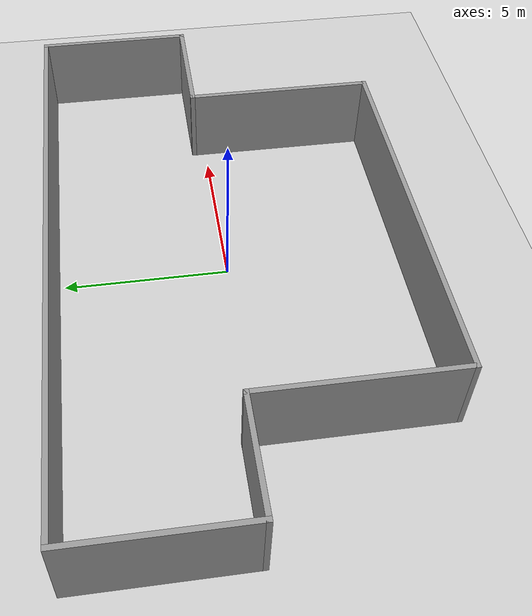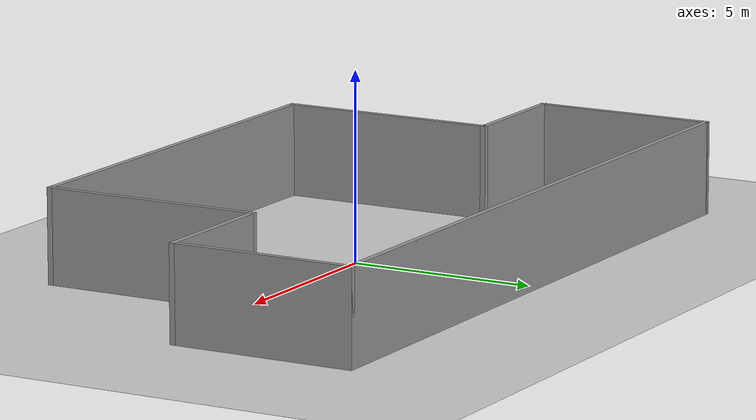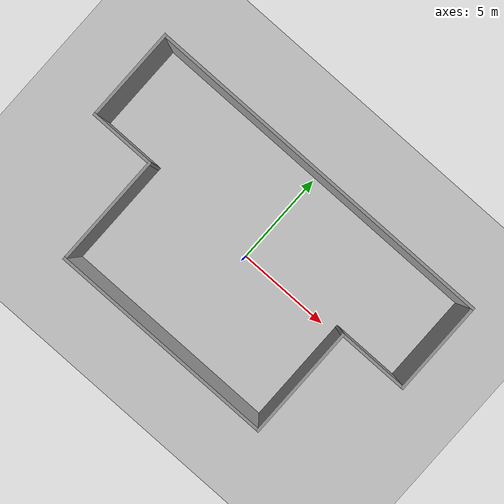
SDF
<sdf version="1.7">
 <world name="default">
  <light name="sun" type="directional">
   <pose>0 0 10 0 -0 0</pose>
   <diffuse>0.8 0.8 0.8 1</diffuse>
   <specular>0.2 0.2 0.2 1</specular>
   <attenuation>
    <range>1000</range>
    <constant>0.9</constant>
    <linear>0.01</linear>
    <quadratic>0.001</quadratic>
   </attenuation>
   <direction>-0.5 0.1 -0.9</direction>
   <spot><inner_angle>0</inner_angle><outer_angle>0</outer_angle><falloff>0</falloff></spot>
  </light>
  <gravity>0 0 -9.8</gravity>
  <magnetic_field>6e-06 2.3e-05 -4.2e-05</magnetic_field>
  <atmosphere type="adiabatic"/>
  <physics type="ode">
   <max_step_size>0.001</max_step_size>
   <real_time_factor>1</real_time_factor>
   <real_time_update_rate>1000</real_time_update_rate>
  </physics>
  <scene><ambient>0.4 0.4 0.4 1</ambient><background>0.7 0.7 0.7 1</background><shadows>1</shadows></scene>
  <audio><device>default</device></audio>
  <spherical_coordinates>
   <surface_model>EARTH_WGS84</surface_model>
   <latitude_deg>0</latitude_deg>
   <longitude_deg>0</longitude_deg>
   <elevation>0</elevation>
   <heading_deg>0</heading_deg>
  </spherical_coordinates>
  <model name="ground_plane">
   <static>1</static>
   <link name="link">
    <collision name="collision">
     <geometry><plane><normal>0 0 1</normal><size>100 100</size></plane></geometry>
     <surface>
      <contact><collide_bitmask>65535</collide_bitmask></contact>
      <friction><ode><mu>100</mu><mu2>50</mu2></ode></friction>
     </surface>
    </collision>
    <visual name="visual">
     <cast_shadows>0</cast_shadows>
     <geometry><plane><normal>0 0 1</normal><size>100 100</size></plane></geometry>
     <material>
      <script><uri>file://media/materials/scripts/gazebo.material</uri><name>Gazebo/Grey</name></script>
     </material>
    </visual>
   </link>
  </model>
  <model name="SimpleModel">
   <pose>-0.054039 -0.108079 0 0 -0 0</pose>
   <link name="Wall_0">
    <collision name="Wall_0_Collision">
     <geometry><box><size>6 0.15 2.5</size></box></geometry>
     <pose>0 0 1.25 0 -0 0</pose>
    </collision>
    <visual name="Wall_0_Visual">
     <pose>0 0 1.25 0 -0 0</pose>
     <geometry><box><size>6 0.15 2.5</size></box></geometry>
     <material>
      <script><uri>file://media/materials/scripts/gazebo.material</uri><name>Gazebo/Grey</name></script>
      <ambient>1 1 1 1</ambient>
     </material>
     <meta><layer>0</layer></meta>
    </visual>
    <pose>5.775 -2.425 0 0 -0 -1.5708</pose>
   </link>
   <link name="Wall_1">
    <collision name="Wall_1_Collision">
     <geometry><box><size>12 0.15 2.5</size></box></geometry>
     <pose>0 0 1.25 0 -0 0</pose>
    </collision>
    <visual name="Wall_1_Visual">
     <pose>0 0 1.25 0 -0 0</pose>
     <geometry><box><size>12 0.15 2.5</size></box></geometry>
     <material>
      <script><uri>file://media/materials/scripts/gazebo.material</uri><name>Gazebo/Grey</name></script>
      <ambient>1 1 1 1</ambient>
     </material>
     <meta><layer>0</layer></meta>
    </visual>
    <pose>-0.15 -5.35 0 0 -0 3.14159</pose>
   </link>
   <link name="Wall_2">
    <collision name="Wall_2_Collision">
     <geometry><box><size>6 0.15 2.5</size></box></geometry>
     <pose>0 0 1.25 0 -0 0</pose>
    </collision>
    <visual name="Wall_2_Visual">
     <pose>0 0 1.25 0 -0 0</pose>
     <geometry><box><size>6 0.15 2.5</size></box></geometry>
     <material>
      <script><uri>file://media/materials/scripts/gazebo.material</uri><name>Gazebo/Grey</name></script>
      <ambient>1 1 1 1</ambient>
     </material>
     <meta><layer>0</layer></meta>
    </visual>
    <pose>-6.075 -2.425 0 0 -0 1.5708</pose>
   </link>
   <link name="Wall_3">
    <collision name="Wall_3_Collision">
     <geometry><box><size>3.5 0.15 2.5</size></box></geometry>
     <pose>0 0 1.25 0 -0 0</pose>
    </collision>
    <visual name="Wall_3_Visual">
     <pose>0 0 1.25 0 -0 0</pose>
     <geometry><box><size>3.5 0.15 2.5</size></box></geometry>
     <material>
      <script><uri>file://media/materials/scripts/gazebo.material</uri><name>Gazebo/Grey</name></script>
      <ambient>1 1 1 1</ambient>
     </material>
     <meta><layer>0</layer></meta>
    </visual>
    <pose>-7.75 0.5 0 0 -0 3.14159</pose>
   </link>
   <link name="Wall_4">
    <collision name="Wall_4_Collision">
     <geometry><box><size>5 0.15 2.5</size></box></geometry>
     <pose>0 0 1.25 0 -0 0</pose>
    </collision>
    <visual name="Wall_4_Visual">
     <pose>0 0 1.25 0 -0 0</pose>
     <geometry><box><size>5 0.15 2.5</size></box></geometry>
     <material>
      <script><uri>file://media/materials/scripts/gazebo.material</uri><name>Gazebo/Grey</name></script>
      <ambient>1 1 1 1</ambient>
     </material>
     <meta><layer>0</layer></meta>
    </visual>
    <pose>-9.425 2.925 0 0 -0 1.5708</pose>
   </link>
   <link name="Wall_5">
    <collision name="Wall_5_Collision">
     <geometry><box><size>19 0.15 2.5</size></box></geometry>
     <pose>0 0 1.25 0 -0 0</pose>
    </collision>
    <visual name="Wall_5_Visual">
     <pose>0 0 1.25 0 -0 0</pose>
     <geometry><box><size>19 0.15 2.5</size></box></geometry>
     <material>
      <script><uri>file://media/materials/scripts/gazebo.material</uri><name>Gazebo/Grey</name></script>
      <ambient>1 1 1 1</ambient>
     </material>
     <meta><layer>0</layer></meta>
    </visual>
    <pose>0 5.35 0 0 -0 0</pose>
   </link>
   <link name="Wall_6">
    <collision name="Wall_6_Collision">
     <geometry><box><size>5 0.15 2.5</size></box></geometry>
     <pose>0 0 1.25 0 -0 0</pose>
    </collision>
    <visual name="Wall_6_Visual">
     <pose>0 0 1.25 0 -0 0</pose>
     <geometry><box><size>5 0.15 2.5</size></box></geometry>
     <material>
      <script><uri>file://media/materials/scripts/gazebo.material</uri><name>Gazebo/Grey</name></script>
      <ambient>1 1 1 1</ambient>
     </material>
     <meta><layer>0</layer></meta>
    </visual>
    <pose>9.425 2.925 0 0 -0 -1.5708</pose>
   </link>
   <link name="Wall_7">
    <collision name="Wall_7_Collision">
     <geometry><box><size>3.8 0.15 2.5</size></box></geometry>
     <pose>0 0 1.25 0 -0 0</pose>
    </collision>
    <visual name="Wall_7_Visual">
     <pose>0 0 1.25 0 -0 0</pose>
     <geometry><box><size>3.8 0.15 2.5</size></box></geometry>
     <material>
      <script><uri>file://media/materials/scripts/gazebo.material</uri><name>Gazebo/Grey</name></script>
      <ambient>1 1 1 1</ambient>
     </material>
     <meta><layer>0</layer></meta>
    </visual>
    <pose>7.6 0.5 0 0 -0 -3.14159</pose>
   </link>
   <static>1</static>
  </model>
 </world>
</sdf>
